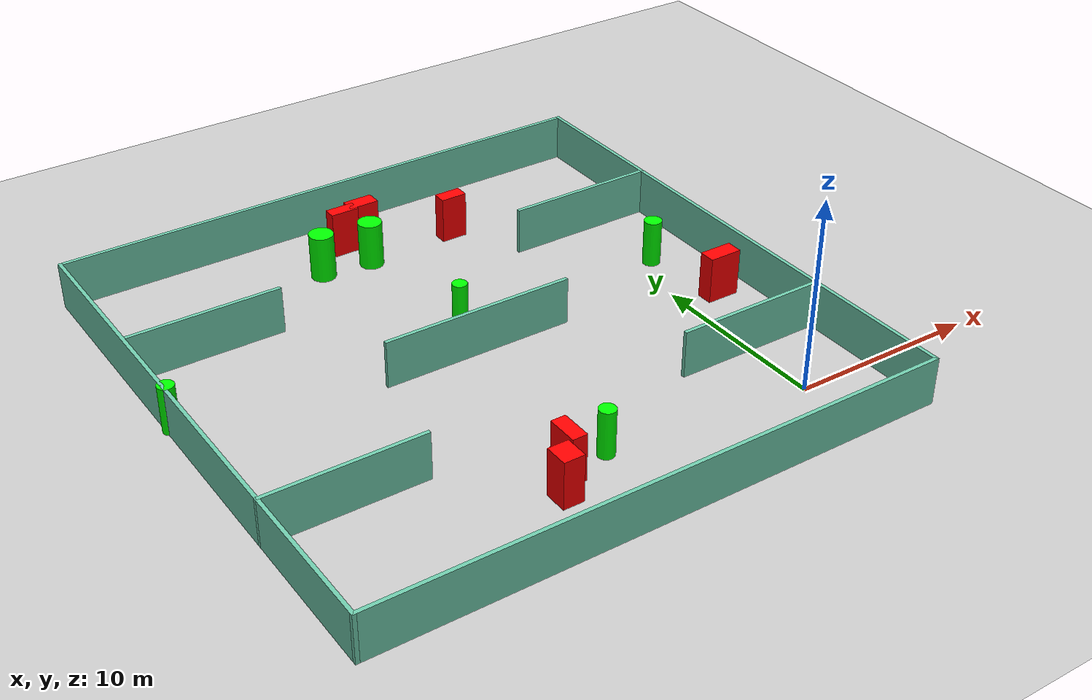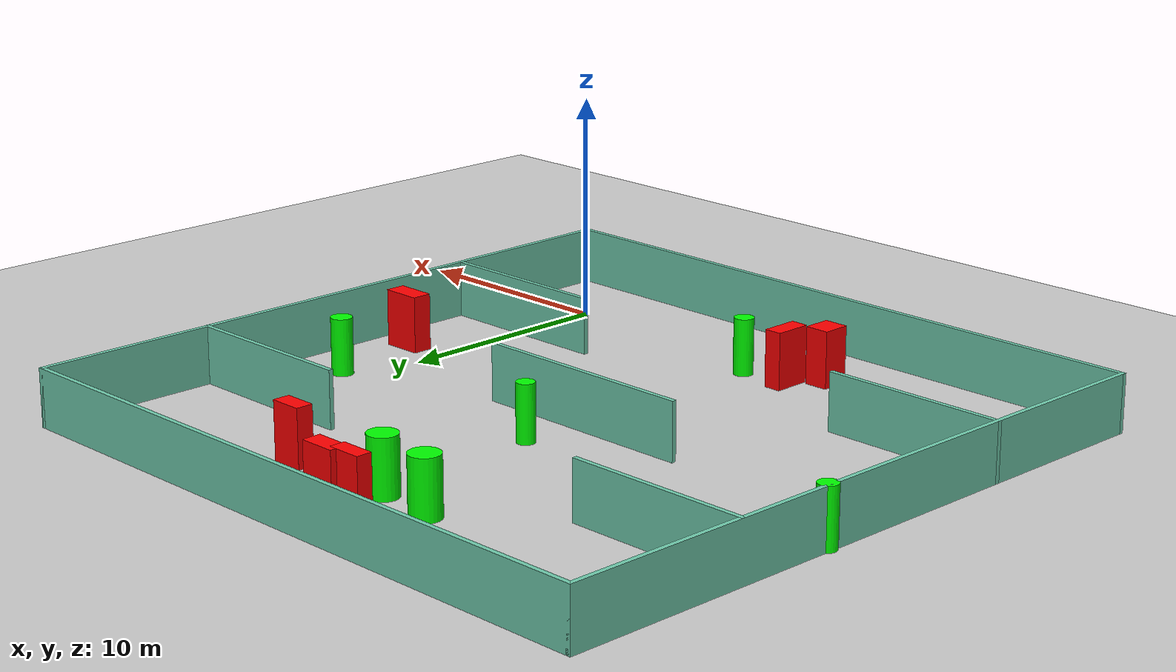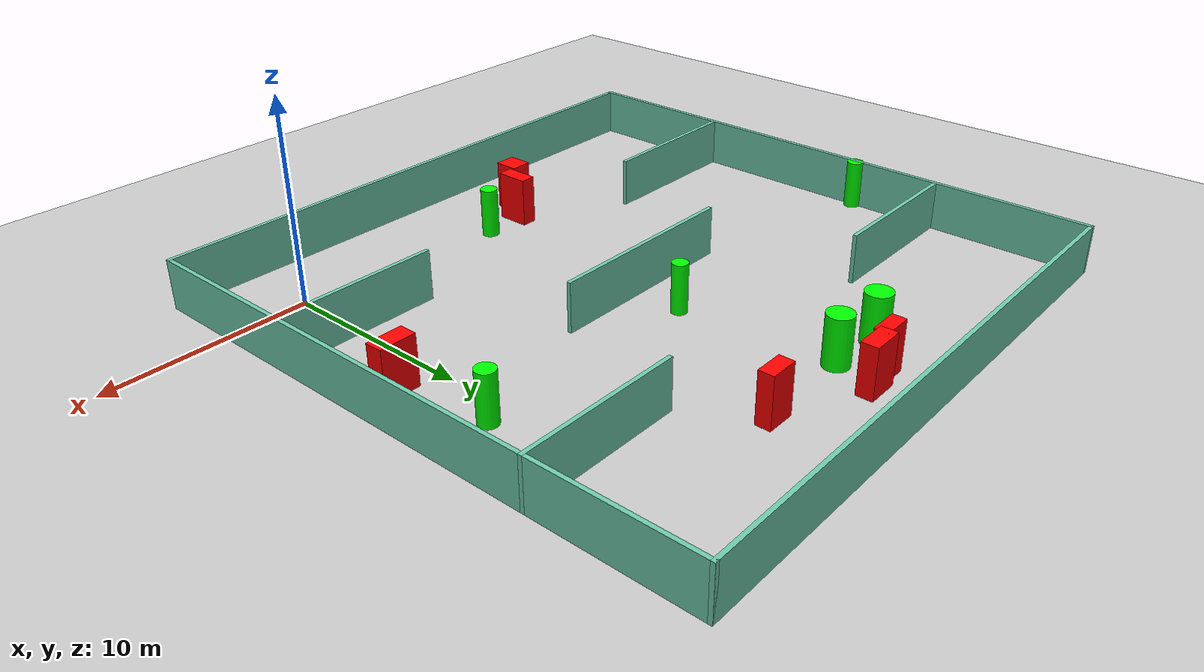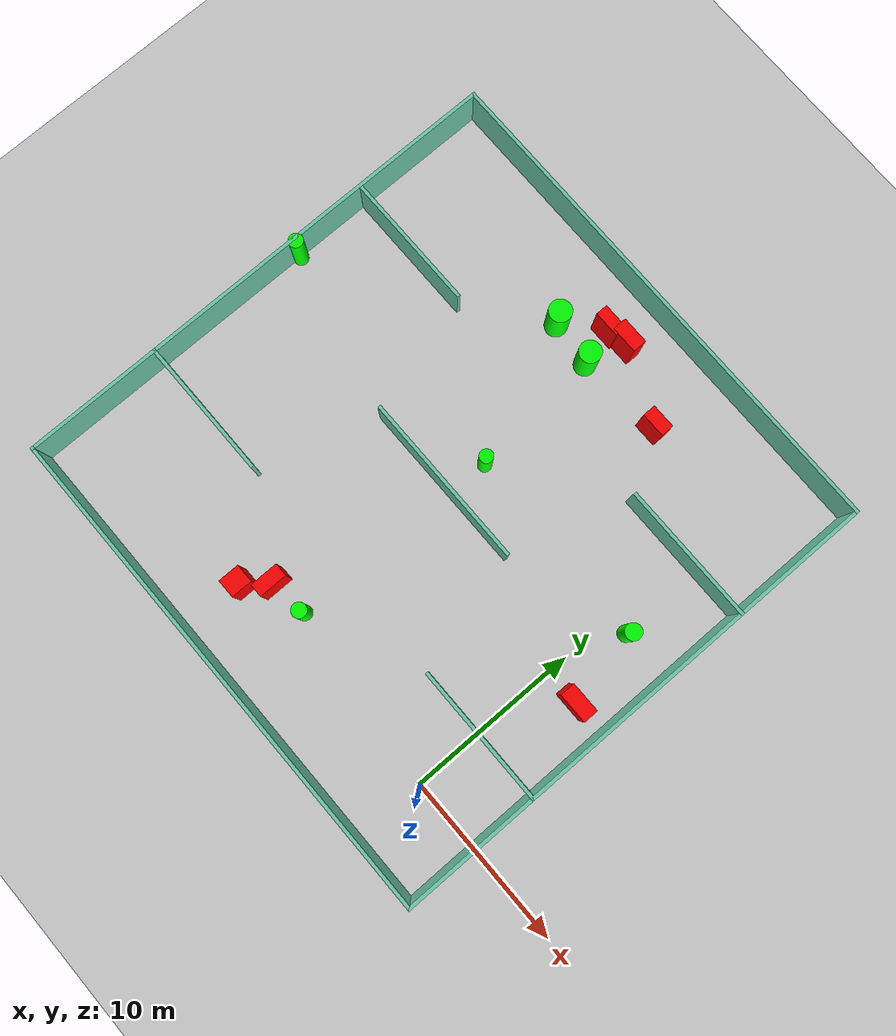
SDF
<sdf version="1.7">
 <world name="default">
  <light name="sun" type="directional">
   <pose>0 0 10 0 -0 0</pose>
   <diffuse>0.8 0.8 0.8 1</diffuse>
   <specular>0.2 0.2 0.2 1</specular>
   <attenuation>
    <range>1000</range>
    <constant>0.9</constant>
    <linear>0.01</linear>
    <quadratic>0.001</quadratic>
   </attenuation>
   <direction>-0.5 0.1 -0.9</direction>
   <spot><inner_angle>0</inner_angle><outer_angle>0</outer_angle><falloff>0</falloff></spot>
  </light>
  <model name="ground_plane">
   <static>1</static>
   <link name="link">
    <collision name="collision">
     <geometry><plane><normal>0 0 1</normal><size>100 100</size></plane></geometry>
     <surface>
      <contact><collide_bitmask>65535</collide_bitmask></contact>
      <friction><ode><mu>100</mu><mu2>50</mu2></ode></friction>
     </surface>
    </collision>
    <visual name="visual">
     <cast_shadows>0</cast_shadows>
     <geometry><plane><normal>0 0 1</normal><size>100 100</size></plane></geometry>
     <material>
      <script><uri>file://media/materials/scripts/gazebo.material</uri><name>Gazebo/Grey</name></script>
     </material>
    </visual>
   </link>
  </model>
  <gravity>0 0 -9.8</gravity>
  <magnetic_field>6e-06 2.3e-05 -4.2e-05</magnetic_field>
  <atmosphere type="adiabatic"/>
  <physics type="ode">
   <max_step_size>0.001</max_step_size>
   <real_time_factor>1</real_time_factor>
   <real_time_update_rate>1000</real_time_update_rate>
  </physics>
  <scene><ambient>0.4 0.4 0.4 1</ambient><background>0.7 0.7 0.7 1</background><shadows>1</shadows></scene>
  <spherical_coordinates>
   <surface_model>EARTH_WGS84</surface_model>
   <latitude_deg>0</latitude_deg>
   <longitude_deg>0</longitude_deg>
   <elevation>0</elevation>
   <heading_deg>0</heading_deg>
  </spherical_coordinates>
  <model name="my_base_walls">
   <link name="Wall_10">
    <collision name="Wall_10_Collision">
     <geometry><box><size>8.2 0.2 2.5</size></box></geometry>
     <pose>0 0 1.25 0 -0 0</pose>
    </collision>
    <visual name="Wall_10_Visual">
     <pose>0 0 1.25 0 -0 0</pose>
     <geometry><box><size>8.2 0.2 2.5</size></box></geometry>
     <material>
      <script><uri>file://media/materials/scripts/gazebo.material</uri><name>Gazebo/Grey</name></script>
      <ambient>0.435294 0.796078 0.67451 1</ambient>
     </material>
     <meta><layer>0</layer></meta>
    </visual>
    <pose>-11 -7 0 0 -0 0</pose>
   </link>
   <link name="Wall_12">
    <collision name="Wall_12_Collision">
     <geometry><box><size>8.2 0.2 2.5</size></box></geometry>
     <pose>0 0 1.25 0 -0 0</pose>
    </collision>
    <visual name="Wall_12_Visual">
     <pose>0 0 1.25 0 -0 0</pose>
     <geometry><box><size>8.2 0.2 2.5</size></box></geometry>
     <material>
      <script><uri>file://media/materials/scripts/gazebo.material</uri><name>Gazebo/Grey</name></script>
      <ambient>0.435294 0.796078 0.67451 1</ambient>
     </material>
     <meta><layer>0</layer></meta>
    </visual>
    <pose>-11 7 0 0 -0 0</pose>
   </link>
   <link name="Wall_14">
    <collision name="Wall_14_Collision">
     <geometry><box><size>8.2 0.2 2.5</size></box></geometry>
     <pose>0 0 1.25 0 -0 0</pose>
    </collision>
    <visual name="Wall_14_Visual">
     <pose>0 0 1.25 0 -0 0</pose>
     <geometry><box><size>8.2 0.2 2.5</size></box></geometry>
     <material>
      <script><uri>file://media/materials/scripts/gazebo.material</uri><name>Gazebo/Grey</name></script>
      <ambient>0.435294 0.796078 0.67451 1</ambient>
     </material>
     <meta><layer>0</layer></meta>
    </visual>
    <pose>11 7 0 0 -0 3.14159</pose>
   </link>
   <link name="Wall_16">
    <collision name="Wall_16_Collision">
     <geometry><box><size>10.2 0.2 2.5</size></box></geometry>
     <pose>0 0 1.25 0 -0 0</pose>
    </collision>
    <visual name="Wall_16_Visual">
     <pose>0 0 1.25 0 -0 0</pose>
     <geometry><box><size>10.2 0.2 2.5</size></box></geometry>
     <material>
      <script><uri>file://media/materials/scripts/gazebo.material</uri><name>Gazebo/Grey</name></script>
      <ambient>0.435294 0.796078 0.67451 1</ambient>
     </material>
     <meta><layer>0</layer></meta>
    </visual>
    <pose>0 0 0 0 -0 3.14159</pose>
   </link>
   <link name="Wall_2">
    <collision name="Wall_2_Collision">
     <geometry><box><size>30.2 0.2 2.5</size></box></geometry>
     <pose>0 0 1.25 0 -0 0</pose>
    </collision>
    <visual name="Wall_2_Visual">
     <pose>0 0 1.25 0 -0 0</pose>
     <geometry><box><size>30.2 0.2 2.5</size></box></geometry>
     <material>
      <script><uri>file://media/materials/scripts/gazebo.material</uri><name>Gazebo/Grey</name></script>
      <ambient>0.435294 0.796078 0.67451 1</ambient>
     </material>
     <meta><layer>0</layer></meta>
    </visual>
    <pose>0 -15 0 0 -0 3.14159</pose>
   </link>
   <link name="Wall_3">
    <collision name="Wall_3_Collision">
     <geometry><box><size>30.2 0.2 2.5</size></box></geometry>
     <pose>0 0 1.25 0 -0 0</pose>
    </collision>
    <visual name="Wall_3_Visual">
     <pose>0 0 1.25 0 -0 0</pose>
     <geometry><box><size>30.2 0.2 2.5</size></box></geometry>
     <material>
      <script><uri>file://media/materials/scripts/gazebo.material</uri><name>Gazebo/Grey</name></script>
      <ambient>0.435294 0.796078 0.67451 1</ambient>
     </material>
     <meta><layer>0</layer></meta>
    </visual>
    <pose>-15 0 0 0 -0 1.5708</pose>
   </link>
   <link name="Wall_4">
    <collision name="Wall_4_Collision">
     <geometry><box><size>30.2 0.2 2.5</size></box></geometry>
     <pose>0 0 1.25 0 -0 0</pose>
    </collision>
    <visual name="Wall_4_Visual">
     <pose>0 0 1.25 0 -0 0</pose>
     <geometry><box><size>30.2 0.2 2.5</size></box></geometry>
     <material>
      <script><uri>file://media/materials/scripts/gazebo.material</uri><name>Gazebo/Grey</name></script>
      <ambient>0.435294 0.796078 0.67451 1</ambient>
     </material>
     <meta><layer>0</layer></meta>
    </visual>
    <pose>0 15 0 0 -0 0</pose>
   </link>
   <link name="Wall_6">
    <collision name="Wall_6_Collision">
     <geometry><box><size>30.2 0.2 2.5</size></box></geometry>
     <pose>0 0 1.25 0 -0 0</pose>
    </collision>
    <visual name="Wall_6_Visual">
     <pose>0 0 1.25 0 -0 0</pose>
     <geometry><box><size>30.2 0.2 2.5</size></box></geometry>
     <material>
      <script><uri>file://media/materials/scripts/gazebo.material</uri><name>Gazebo/Grey</name></script>
      <ambient>0.435294 0.796078 0.67451 1</ambient>
     </material>
     <meta><layer>0</layer></meta>
    </visual>
    <pose>15 0 0 0 -0 1.5708</pose>
   </link>
   <link name="Wall_8">
    <collision name="Wall_8_Collision">
     <geometry><box><size>8.2 0.2 2.5</size></box></geometry>
     <pose>0 0 1.25 0 -0 0</pose>
    </collision>
    <visual name="Wall_8_Visual">
     <pose>0 0 1.25 0 -0 0</pose>
     <geometry><box><size>8.2 0.2 2.5</size></box></geometry>
     <material>
      <script><uri>file://media/materials/scripts/gazebo.material</uri><name>Gazebo/Grey</name></script>
      <ambient>0.435294 0.796078 0.67451 1</ambient>
     </material>
     <meta><layer>0</layer></meta>
    </visual>
    <pose>11 -7 0 0 -0 3.14159</pose>
   </link>
   <static>1</static>
   <pose>-11 11 0 0 -0 0</pose>
  </model>
  <model name="cylinder1">
   <static>1</static>
   <link name="link">
    <inertial>
     <mass>1</mass>
     <inertia><ixx>0.5</ixx><ixy>0</ixy><ixz>0</ixz><iyy>0.5</iyy><iyz>0</iyz><izz>1</izz></inertia>
    </inertial>
    <collision name="collision">
     <geometry><cylinder><radius>0.4210255261161033</radius><length>2.5</length></cylinder></geometry>
    </collision>
    <visual name="visual">
     <geometry><cylinder><radius>0.4210255261161033</radius><length>2.5</length></cylinder></geometry>
     <material>
      <ambient>0 1 0 1</ambient>
      <diffuse>0 1 0 1</diffuse>
      <specular>0.1 0.1 0.1 1</specular>
      <emissive>0 0 0 0</emissive>
     </material>
    </visual>
   </link>
   <pose>-25.84495175585032 13.433676921180059 1.25 0 0 0</pose>
  </model>
  <model name="cylinder2">
   <static>1</static>
   <link name="link">
    <inertial>
     <mass>1</mass>
     <inertia><ixx>0.5</ixx><ixy>0</ixy><ixz>0</ixz><iyy>0.5</iyy><iyz>0</iyz><izz>1</izz></inertia>
    </inertial>
    <collision name="collision">
     <geometry><cylinder><radius>0.6544382908088557</radius><length>2.5</length></cylinder></geometry>
    </collision>
    <visual name="visual">
     <geometry><cylinder><radius>0.6544382908088557</radius><length>2.5</length></cylinder></geometry>
     <material>
      <ambient>0 1 0 1</ambient>
      <diffuse>0 1 0 1</diffuse>
      <specular>0.1 0.1 0.1 1</specular>
      <emissive>0 0 0 0</emissive>
     </material>
    </visual>
   </link>
   <pose>-13.838308816396557 21.535841317637843 1.25 0 0 0</pose>
  </model>
  <model name="cylinder3">
   <static>1</static>
   <link name="link">
    <inertial>
     <mass>1</mass>
     <inertia><ixx>0.5</ixx><ixy>0</ixy><ixz>0</ixz><iyy>0.5</iyy><iyz>0</iyz><izz>1</izz></inertia>
    </inertial>
    <collision name="collision">
     <geometry><cylinder><radius>0.47067858527441797</radius><length>2.5</length></cylinder></geometry>
    </collision>
    <visual name="visual">
     <geometry><cylinder><radius>0.47067858527441797</radius><length>2.5</length></cylinder></geometry>
     <material>
      <ambient>0 1 0 1</ambient>
      <diffuse>0 1 0 1</diffuse>
      <specular>0.1 0.1 0.1 1</specular>
      <emissive>0 0 0 0</emissive>
     </material>
    </visual>
   </link>
   <pose>1.126385059858677 13.232806243499098 1.25 0 0 0</pose>
  </model>
  <model name="cylinder4">
   <static>1</static>
   <link name="link">
    <inertial>
     <mass>1</mass>
     <inertia><ixx>0.5</ixx><ixy>0</ixy><ixz>0</ixz><iyy>0.5</iyy><iyz>0</iyz><izz>1</izz></inertia>
    </inertial>
    <collision name="collision">
     <geometry><cylinder><radius>0.3967310867919455</radius><length>2.5</length></cylinder></geometry>
    </collision>
    <visual name="visual">
     <geometry><cylinder><radius>0.3967310867919455</radius><length>2.5</length></cylinder></geometry>
     <material>
      <ambient>0 1 0 1</ambient>
      <diffuse>0 1 0 1</diffuse>
      <specular>0.1 0.1 0.1 1</specular>
      <emissive>0 0 0 0</emissive>
     </material>
    </visual>
   </link>
   <pose>-10.496142292118856 13.495492228510741 1.25 0 0 0</pose>
  </model>
  <model name="cylinder5">
   <static>1</static>
   <link name="link">
    <inertial>
     <mass>1</mass>
     <inertia><ixx>0.5</ixx><ixy>0</ixy><ixz>0</ixz><iyy>0.5</iyy><iyz>0</iyz><izz>1</izz></inertia>
    </inertial>
    <collision name="collision">
     <geometry><cylinder><radius>0.6366891438545755</radius><length>2.5</length></cylinder></geometry>
    </collision>
    <visual name="visual">
     <geometry><cylinder><radius>0.6366891438545755</radius><length>2.5</length></cylinder></geometry>
     <material>
      <ambient>0 1 0 1</ambient>
      <diffuse>0 1 0 1</diffuse>
      <specular>0.1 0.1 0.1 1</specular>
      <emissive>0 0 0 0</emissive>
     </material>
    </visual>
   </link>
   <pose>-11.158334220989897 21.25487841621135 1.25 0 0 0</pose>
  </model>
  <model name="cylinder6">
   <static>1</static>
   <link name="link">
    <inertial>
     <mass>1</mass>
     <inertia><ixx>0.5</ixx><ixy>0</ixy><ixz>0</ixz><iyy>0.5</iyy><iyz>0</iyz><izz>1</izz></inertia>
    </inertial>
    <collision name="collision">
     <geometry><cylinder><radius>0.4303616047880743</radius><length>2.5</length></cylinder></geometry>
    </collision>
    <visual name="visual">
     <geometry><cylinder><radius>0.4303616047880743</radius><length>2.5</length></cylinder></geometry>
     <material>
      <ambient>0 1 0 1</ambient>
      <diffuse>0 1 0 1</diffuse>
      <specular>0.1 0.1 0.1 1</specular>
      <emissive>0 0 0 0</emissive>
     </material>
    </visual>
   </link>
   <pose>-10.655217315423906 1.13557845332015 1.25 0 0 0</pose>
  </model>
  <model name="box1">
   <static>1</static>
   <link name="link">
    <inertial>
     <mass>1</mass>
     <inertia><ixx>0.083</ixx><ixy>0</ixy><ixz>0</ixz><iyy>0.083</iyy><iyz>0</iyz><izz>0.083</izz></inertia>
    </inertial>
    <collision name="collision">
     <geometry><box><size>1.088212614437274 1.2391134841399465 2.5</size></box></geometry>
    </collision>
    <visual name="visual">
     <geometry><box><size>1.088212614437274 1.2391134841399465 2.5</size></box></geometry>
     <material>
      <ambient>1 0 0 1</ambient>
      <diffuse>1 0 0 1</diffuse>
      <specular>0.1 0.1 0.1 1</specular>
      <emissive>0 0 0 0</emissive>
     </material>
    </visual>
    <sensor name="my_contact" type="contact">
     <contact><collision>box_collision</collision><topic>__default_topic__</topic></contact>
    </sensor>
   </link>
   <pose>-13.894512465282272 -0.38150556113710055 1.25 0 0 0</pose>
  </model>
  <model name="box2">
   <static>1</static>
   <link name="link">
    <inertial>
     <mass>1</mass>
     <inertia><ixx>0.083</ixx><ixy>0</ixy><ixz>0</ixz><iyy>0.083</iyy><iyz>0</iyz><izz>0.083</izz></inertia>
    </inertial>
    <collision name="collision">
     <geometry><box><size>1.781032698734659 0.8788644321438024 2.5</size></box></geometry>
    </collision>
    <visual name="visual">
     <geometry><box><size>1.781032698734659 0.8788644321438024 2.5</size></box></geometry>
     <material>
      <ambient>1 0 0 1</ambient>
      <diffuse>1 0 0 1</diffuse>
      <specular>0.1 0.1 0.1 1</specular>
      <emissive>0 0 0 0</emissive>
     </material>
    </visual>
    <sensor name="my_contact" type="contact">
     <contact><collision>box_collision</collision><topic>__default_topic__</topic></contact>
    </sensor>
   </link>
   <pose>1.992343081474349 8.808722114645883 1.25 0 0 0</pose>
  </model>
  <model name="box3">
   <static>1</static>
   <link name="link">
    <inertial>
     <mass>1</mass>
     <inertia><ixx>0.083</ixx><ixy>0</ixy><ixz>0</ixz><iyy>0.083</iyy><iyz>0</iyz><izz>0.083</izz></inertia>
    </inertial>
    <collision name="collision">
     <geometry><box><size>1.4324120168161827 0.7513920378229222 2.5</size></box></geometry>
    </collision>
    <visual name="visual">
     <geometry><box><size>1.4324120168161827 0.7513920378229222 2.5</size></box></geometry>
     <material>
      <ambient>1 0 0 1</ambient>
      <diffuse>1 0 0 1</diffuse>
      <specular>0.1 0.1 0.1 1</specular>
      <emissive>0 0 0 0</emissive>
     </material>
    </visual>
    <sensor name="my_contact" type="contact">
     <contact><collision>box_collision</collision><topic>__default_topic__</topic></contact>
    </sensor>
   </link>
   <pose>-6.127881957480614 21.469227916116765 1.25 0 0 0</pose>
  </model>
  <model name="box4">
   <static>1</static>
   <link name="link">
    <inertial>
     <mass>1</mass>
     <inertia><ixx>0.083</ixx><ixy>0</ixy><ixz>0</ixz><iyy>0.083</iyy><iyz>0</iyz><izz>0.083</izz></inertia>
    </inertial>
    <collision name="collision">
     <geometry><box><size>1.5286078056075487 0.6859340362689476 2.5</size></box></geometry>
    </collision>
    <visual name="visual">
     <geometry><box><size>1.5286078056075487 0.6859340362689476 2.5</size></box></geometry>
     <material>
      <ambient>1 0 0 1</ambient>
      <diffuse>1 0 0 1</diffuse>
      <specular>0.1 0.1 0.1 1</specular>
      <emissive>0 0 0 0</emissive>
     </material>
    </visual>
    <sensor name="my_contact" type="contact">
     <contact><collision>box_collision</collision><topic>__default_topic__</topic></contact>
    </sensor>
   </link>
   <pose>-11.715813975788016 23.214190778475864 1.25 0 0 0</pose>
  </model>
  <model name="box5">
   <static>1</static>
   <link name="link">
    <inertial>
     <mass>1</mass>
     <inertia><ixx>0.083</ixx><ixy>0</ixy><ixz>0</ixz><iyy>0.083</iyy><iyz>0</iyz><izz>0.083</izz></inertia>
    </inertial>
    <collision name="collision">
     <geometry><box><size>1.6127659656285187 0.8200842820352552 2.5</size></box></geometry>
    </collision>
    <visual name="visual">
     <geometry><box><size>1.6127659656285187 0.8200842820352552 2.5</size></box></geometry>
     <material>
      <ambient>1 0 0 1</ambient>
      <diffuse>1 0 0 1</diffuse>
      <specular>0.1 0.1 0.1 1</specular>
      <emissive>0 0 0 0</emissive>
     </material>
    </visual>
    <sensor name="my_contact" type="contact">
     <contact><collision>box_collision</collision><topic>__default_topic__</topic></contact>
    </sensor>
   </link>
   <pose>-10.502358193400498 23.410512366697066 1.25 0 0 0</pose>
  </model>
  <model name="box6">
   <static>1</static>
   <link name="link">
    <inertial>
     <mass>1</mass>
     <inertia><ixx>0.083</ixx><ixy>0</ixy><ixz>0</ixz><iyy>0.083</iyy><iyz>0</iyz><izz>0.083</izz></inertia>
    </inertial>
    <collision name="collision">
     <geometry><box><size>0.7812813684424269 1.663580179731938 2.5</size></box></geometry>
    </collision>
    <visual name="visual">
     <geometry><box><size>0.7812813684424269 1.663580179731938 2.5</size></box></geometry>
     <material>
      <ambient>1 0 0 1</ambient>
      <diffuse>1 0 0 1</diffuse>
      <specular>0.1 0.1 0.1 1</specular>
      <emissive>0 0 0 0</emissive>
     </material>
    </visual>
    <sensor name="my_contact" type="contact">
     <contact><collision>box_collision</collision><topic>__default_topic__</topic></contact>
    </sensor>
   </link>
   <pose>-12.834420847697228 0.9312614801085339 1.25 0 0 0</pose>
  </model>
 </world>
</sdf>
